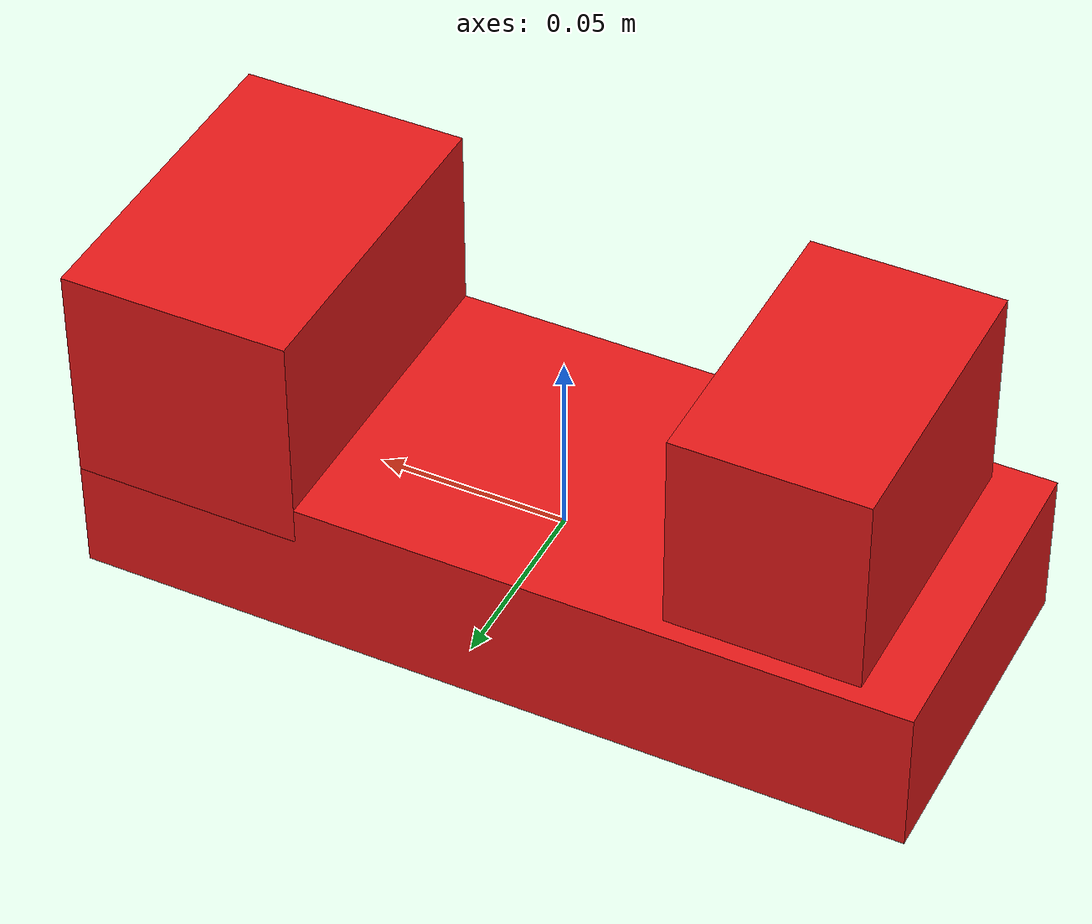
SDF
<?xml version="1.0"?>
<sdf version="1.6">
  <model name="simple_shoe">
    <pose>0 0 0 0 0 0</pose>
    <link name="shoe_body">
      <inertial>
        <mass>0.1</mass>
        <inertia><ixx>0.001</ixx><iyy>0.001</iyy><izz>0.001</izz></inertia>
      </inertial>
      <!-- 鞋底 -->
      <visual name="sole">
        <geometry><box><size>0.22 0.09 0.04</size></box></geometry>
        <material><diffuse>0.9 0.1 0.1 1</diffuse></material>
      </visual>
      <collision name="sole_col"><geometry><box><size>0.22 0.09 0.04</size></box></geometry></collision>
      <!-- 鞋头 -->
      <visual name="toe">
        <pose>0.08 0 0.04 0 0 0</pose>
        <geometry><box><size>0.06 0.09 0.06</size></box></geometry>
        <material><diffuse>0.9 0.1 0.1 1</diffuse></material>
      </visual>
      <collision name="toe_col"><pose>0.08 0 0.04 0 0 0</pose><geometry><box><size>0.06 0.09 0.06</size></box></geometry></collision>
      <!-- 鞋跟 -->
      <visual name="heel">
        <pose>-0.07 0 0.04 0 0 0</pose>
        <geometry><box><size>0.05 0.08 0.07</size></box></geometry>
        <material><diffuse>0.9 0.1 0.1 1</diffuse></material>
      </visual>
      <collision name="heel_col"><pose>-0.07 0 0.04 0 0 0</pose><geometry><box><size>0.05 0.08 0.07</size></box></geometry></collision>
    </link>
  </model>
</sdf>
